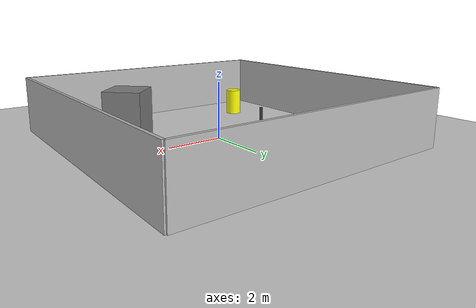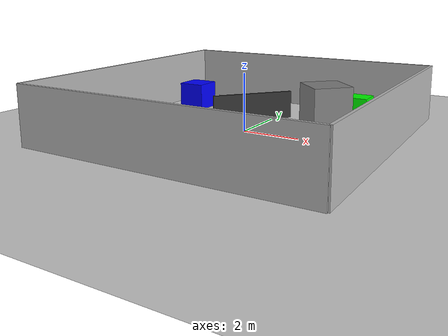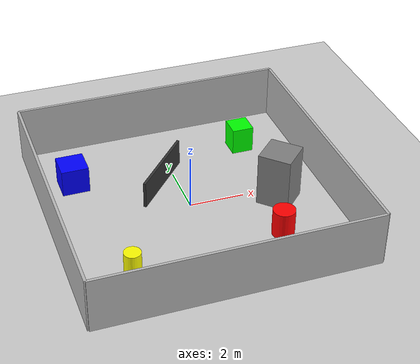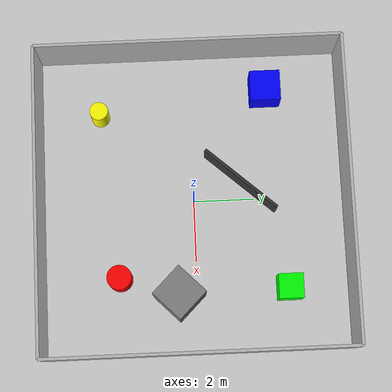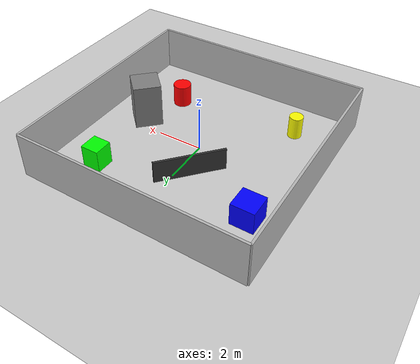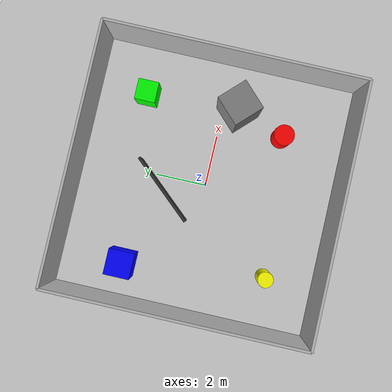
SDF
<sdf version="1.7">
 <world name="room_10x10_dense">
  <light name="sun" type="directional">
   <pose>0 0 10 0 -0 0</pose>
   <diffuse>0.8 0.8 0.8 1</diffuse>
   <specular>0.2 0.2 0.2 1</specular>
   <direction>-0.5 0.1 -0.9</direction>
   <attenuation><range>10</range></attenuation>
   <spot><inner_angle>0</inner_angle><outer_angle>0</outer_angle><falloff>0</falloff></spot>
  </light>
  <model name="ground_plane">
   <static>1</static>
   <link name="link">
    <collision name="collision">
     <geometry><plane><normal>0 0 1</normal><size>100 100</size></plane></geometry>
    </collision>
    <visual name="visual">
     <geometry><plane><normal>0 0 1</normal><size>100 100</size></plane></geometry>
     <material><ambient>0.8 0.8 0.8 1</ambient><diffuse>0.8 0.8 0.8 1</diffuse></material>
    </visual>
   </link>
  </model>
  <model name="walls">
   <static>1</static>
   <link name="link">
    <visual name="n"><pose>0 5 1 0 -0 0</pose><geometry><box><size>10 0.1 2</size></box></geometry></visual>
    <collision name="n"><pose>0 5 1 0 -0 0</pose><geometry><box><size>10 0.1 2</size></box></geometry></collision>
    <visual name="s"><pose>0 -5 1 0 -0 0</pose><geometry><box><size>10 0.1 2</size></box></geometry></visual>
    <collision name="s">
     <pose>0 -5 1 0 -0 0</pose>
     <geometry><box><size>10 0.1 2</size></box></geometry>
    </collision>
    <visual name="e"><pose>5 0 1 0 -0 0</pose><geometry><box><size>0.1 10 2</size></box></geometry></visual>
    <collision name="e"><pose>5 0 1 0 -0 0</pose><geometry><box><size>0.1 10 2</size></box></geometry></collision>
    <visual name="w"><pose>-5 0 1 0 -0 0</pose><geometry><box><size>0.1 10 2</size></box></geometry></visual>
    <collision name="w">
     <pose>-5 0 1 0 -0 0</pose>
     <geometry><box><size>0.1 10 2</size></box></geometry>
    </collision>
   </link>
  </model>
  <model name="center_pillar">
   <static>1</static>
   <pose>3.13164 -0.579644 1 0 0 -0.787469</pose>
   <link name="link">
    <collision name="col"><geometry><box><size>1.2 1.2 2</size></box></geometry></collision>
    <visual name="vis">
     <geometry><box><size>1.2 1.2 2</size></box></geometry>
     <material><ambient>0.5 0.5 0.5 1</ambient></material>
    </visual>
   </link>
  </model>
  <model name="box_blue">
   <static>1</static>
   <pose>-3.65207 2.51986 0.5 0 -0 0</pose>
   <link name="link">
    <collision name="col"><geometry><box><size>1 1 1</size></box></geometry></collision>
    <visual name="vis">
     <geometry><box><size>1 1 1</size></box></geometry>
     <material><ambient>0 0 1 1</ambient><diffuse>0 0 1 1</diffuse></material>
    </visual>
   </link>
  </model>
  <model name="cyl_red">
   <static>1</static>
   <pose>2.5 -2.5 0.5 0 -0 0</pose>
   <link name="link">
    <collision name="col">
     <geometry><cylinder><radius>0.4</radius><length>1</length></cylinder></geometry>
    </collision>
    <visual name="vis">
     <geometry><cylinder><radius>0.4</radius><length>1</length></cylinder></geometry>
     <material><ambient>1 0 0 1</ambient><diffuse>1 0 0 1</diffuse></material>
    </visual>
   </link>
  </model>
  <model name="box_green">
   <static>1</static>
   <pose>3 3 0.5 0 -0 0</pose>
   <link name="link">
    <collision name="col"><geometry><box><size>0.8 0.8 1</size></box></geometry></collision>
    <visual name="vis">
     <geometry><box><size>0.8 0.8 1</size></box></geometry>
     <material><ambient>0 1 0 1</ambient><diffuse>0 1 0 1</diffuse></material>
    </visual>
   </link>
  </model>
  <model name="cyl_yellow">
   <static>1</static>
   <pose>-3 -3 0.5 0 -0 0</pose>
   <link name="link">
    <collision name="col">
     <geometry><cylinder><radius>0.3</radius><length>1</length></cylinder></geometry>
    </collision>
    <visual name="vis">
     <geometry><cylinder><radius>0.3</radius><length>1</length></cylinder></geometry>
     <material><ambient>1 1 0 1</ambient><diffuse>1 1 0 1</diffuse></material>
    </visual>
   </link>
  </model>
  <model name="small_divider">
   <static>1</static>
   <pose>-0.557047 1.57157 0.5 0 -0 0.846767</pose>
   <link name="link">
    <collision name="col"><geometry><box><size>3 0.1 1</size></box></geometry></collision>
    <visual name="vis">
     <geometry><box><size>3 0.1 1</size></box></geometry>
     <material><ambient>0.2 0.2 0.2 1</ambient></material>
    </visual>
   </link>
  </model>
  <gravity>0 0 -9.8</gravity>
  <magnetic_field>6e-06 2.3e-05 -4.2e-05</magnetic_field>
  <atmosphere type="adiabatic"/>
  <physics type="ode">
   <max_step_size>0.001</max_step_size>
   <real_time_factor>1</real_time_factor>
   <real_time_update_rate>1000</real_time_update_rate>
  </physics>
  <scene><ambient>0.4 0.4 0.4 1</ambient><background>0.7 0.7 0.7 1</background><shadows>1</shadows></scene>
  <audio><device>default</device></audio>
  <spherical_coordinates>
   <surface_model>EARTH_WGS84</surface_model>
   <latitude_deg>0</latitude_deg>
   <longitude_deg>0</longitude_deg>
   <elevation>0</elevation>
   <heading_deg>0</heading_deg>
  </spherical_coordinates>
 </world>
</sdf>
